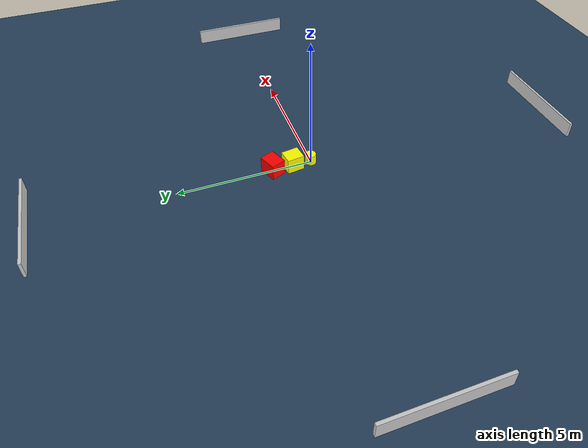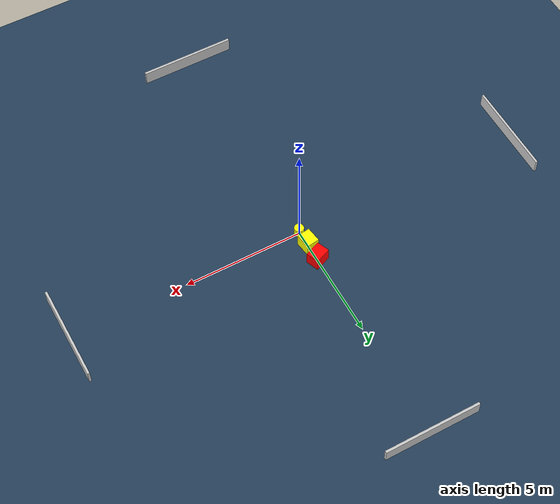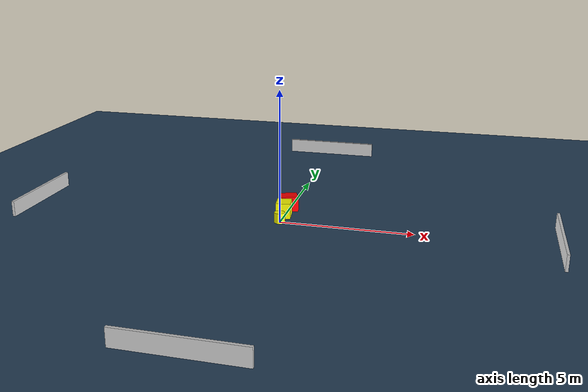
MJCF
<?xml version="1.0" ?>
<mujoco model="generated_environment">
  <option timestep="0.01" integrator="RK4" cone="elliptic"/>
  <default>
    <geom density="1"/>
  </default>
  <asset>
    <texture builtin="gradient" height="3072" name="skybox" rgb1="0.3 0.5 0.7" rgb2="0 0 0" type="skybox" width="512"/>
    <texture builtin="checker" height="300" name="groundplane" rgb1="0.2 0.3 0.4" rgb2="0.1 0.2 0.3" type="2d" width="300"/>
    <material name="groundplane" reflectance="0.2" texrepeat="5 5" texture="groundplane"/>
  </asset>
  <worldbody>
    <light dir="0 0 -1" directional="true" pos="0 0 1.5"/>
    <geom condim="3" friction="0.5 0.005 0.001" material="groundplane" name="floor" pos="0 0 0" size="0 0 0.05" type="plane"/>
    <body name="walls">
      <geom name="wall_1" condim="4" pos="-10.0 0.0 0.3" rgba="0.800000011920929 0.800000011920929 0.800000011920929 1.0" size="0.05 2.0 0.3" type="box"/>
      <geom name="wall_2" condim="4" pos="10.0 0.0 0.3" rgba="0.800000011920929 0.800000011920929 0.800000011920929 1.0" size="0.05 2.0 0.3" type="box"/>
      <geom name="wall_3" condim="4" pos="0.0 -10.0 0.3" rgba="0.800000011920929 0.800000011920929 0.800000011920929 1.0" size="2.0 0.05 0.3" type="box"/>
      <geom name="wall_4" condim="4" pos="0.0 10.0 0.3" rgba="0.800000011920929 0.800000011920929 0.800000011920929 1.0" size="2.0 0.05 0.3" type="box"/>
    </body>
    <body name="robot">
      <joint name="joint_x" type="slide" pos="0 0 0" axis="1 0 0"/>
      <joint name="joint_y" type="slide" pos="0 0 0" axis="0 1 0"/>
      <geom name="robot" type="cylinder" pos="0.0 0.0 0.2" size="0.2 0.2 0.0" mass="5.0" friction="1.0 0.005 0.0001" condim="4" rgba="1.0 1.0 0.0 1.0"/>
    </body>
    <body name="obstacle_1_movable">
      <geom name="obstacle_1_movable" condim="4" pos="-0.017797543064137143 0.698664015170131 0.3" euler="0 0 187.9945397812675" friction="0.0 0.005 0.001" rgba="1.0 1.0 0.0 1.0" size="0.27778791354772847 0.3209817267978385 0.3" type="box" mass="0.1"/>
      <joint type="free"/>
    </body>
    <body name="obstacle_2_static">
      <geom name="obstacle_2_static" condim="4" pos="-0.024853570024892694 1.4656022133125732 0.3" euler="0 0 22.395137799247244" friction="0.0 0.005 0.001" rgba="1.0 0.0 0.0 1.0" size="0.3449984839050245 0.27359289071805126 0.3" type="box"/>
    </body>
  </worldbody>
  <actuator>
    <motor name="actuator_x" joint="joint_x" gear="1" ctrlrange="-1 1"/>
    <motor name="actuator_y" joint="joint_y" gear="1" ctrlrange="-1 1"/>
  </actuator>
</mujoco>
